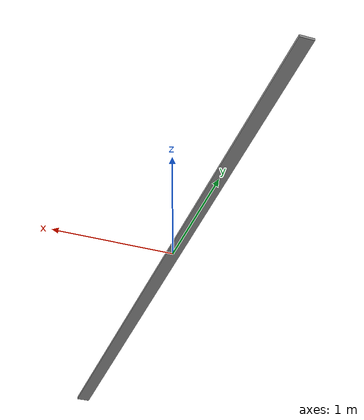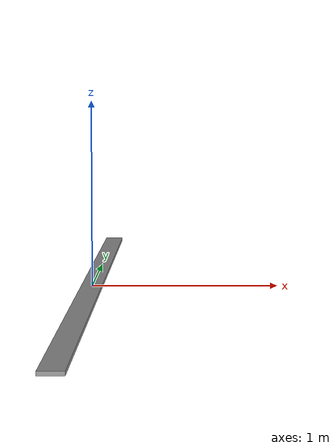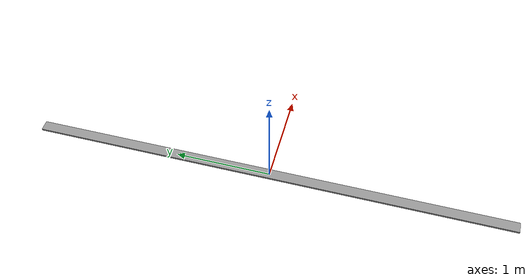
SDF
<?xml version='1.0'?>
<sdf version='1.7'>
  <model name='linev2'>
    <link name='link'>
      <inertial>
        <mass>3.15518</mass>
        <inertia>
          <ixx>6.76872</ixx>
          <ixy>0</ixy>
          <ixz>0</ixz>
          <iyy>0.0033261</iyy>
          <iyz>0</iyz>
          <izz>6.77184</izz>
        </inertia>
        <pose>0 0 0 0 -0 0</pose>
      </inertial>
      <self_collide>0</self_collide>
      <enable_wind>0</enable_wind>
      <kinematic>0</kinematic>
      <pose>0 0 0 0 -0 0</pose>
      <gravity>1</gravity>
      <visual name='visual'>
        <geometry>
          <box>
            <size>0.110713 5.07374 0.019817</size>
          </box>
        </geometry>
        <material>
          <script>
            <name>Gazebo/Grey</name>
            <uri>file://media/materials/scripts/gazebo.material</uri>
          </script>
          <shader type='pixel'>
            <normal_map>__default__</normal_map>
          </shader>
          <ambient>0 0 0 1</ambient>
          <diffuse>0 0 0 1</diffuse>
          <specular>0 0 0 1</specular>
          <emissive>0 0 0 1</emissive>
        </material>
        <pose>0 0 0 0 -0 0</pose>
        <transparency>0</transparency>
        <cast_shadows>1</cast_shadows>
      </visual>
    </link>
    <static>0</static>
    <allow_auto_disable>1</allow_auto_disable>
  </model>
</sdf>
